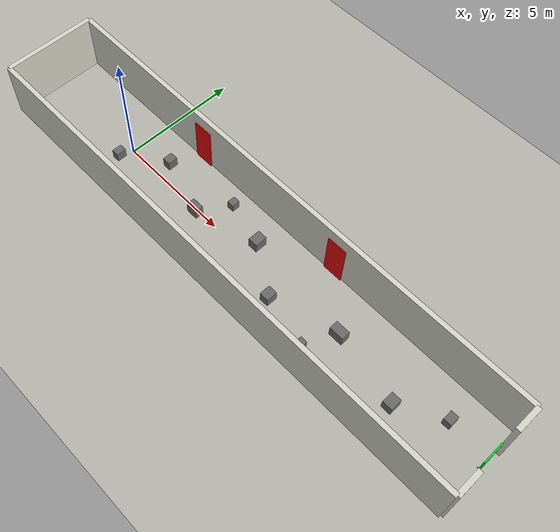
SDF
<?xml version="1.0" ?>
<sdf version="1.6">
  <world name="fire_corridor">
    <physics name="default_physics" type="ode">
      <max_step_size>0.001</max_step_size>
      <real_time_update_rate>1000</real_time_update_rate>
    </physics>
    <plugin name="gz::sim::systems::Physics" filename="gz-sim-physics-system"/>
    <plugin name="gz::sim::systems::UserCommands" filename="gz-sim-user-commands-system"/>
    <plugin name="gz::sim::systems::SceneBroadcaster" filename="gz-sim-scene-broadcaster-system"/>
    <plugin name="gz::sim::systems::Sensors" filename="gz-sim-sensors-system"><render_engine>ogre2</render_engine></plugin>
    <light type="directional" name="sun">
      <cast_shadows>true</cast_shadows>
      <pose>6 0 10 0 0 0</pose>
      <diffuse>0.9 0.9 0.9 1</diffuse>
      <specular>0.3 0.3 0.3 1</specular>
      <direction>-0.5 0.1 -1</direction>
    </light>
    <light type="point" name="light_mid">
      <pose>8 0 2.8 0 0 0</pose>
      <diffuse>0.8 0.8 0.8 1</diffuse>
      <specular>0.1 0.1 0.1 1</specular>
      <attenuation><range>16</range><linear>0.05</linear></attenuation>
    </light>

    <model name="ground_plane">
      <static>true</static>
      <link name="link">
        <collision name="col"><geometry><plane><normal>0 0 1</normal><size>30 10</size></plane></geometry></collision>
        <visual name="vis"><geometry><plane><normal>0 0 1</normal><size>30 10</size></plane></geometry>
          <material><ambient>0.72 0.72 0.68 1</ambient><diffuse>0.72 0.72 0.68 1</diffuse></material>
        </visual>
      </link>
    </model>

    <model name="wall_south">
      <static>true</static>
      <pose>6.50 -2.00 1.25 0 0 0</pose>
      <link name="link">
        <collision name="col"><geometry><box><size>23.000 0.200 2.500</size></box></geometry></collision>
        <visual name="vis">
          <geometry><box><size>23.000 0.200 2.500</size></box></geometry>
          <material><ambient>0.85 0.85 0.80 1</ambient><diffuse>0.85 0.85 0.80 1</diffuse></material>
        </visual>
      </link>
    </model>
    <model name="wall_north">
      <static>true</static>
      <pose>6.50 2.00 1.25 0 0 0</pose>
      <link name="link">
        <collision name="col"><geometry><box><size>23.000 0.200 2.500</size></box></geometry></collision>
        <visual name="vis">
          <geometry><box><size>23.000 0.200 2.500</size></box></geometry>
          <material><ambient>0.85 0.85 0.80 1</ambient><diffuse>0.85 0.85 0.80 1</diffuse></material>
        </visual>
      </link>
    </model>
    <model name="wall_west">
      <static>true</static>
      <pose>-5.00 0.00 1.25 0 0 0</pose>
      <link name="link">
        <collision name="col"><geometry><box><size>0.200 4.000 2.500</size></box></geometry></collision>
        <visual name="vis">
          <geometry><box><size>0.200 4.000 2.500</size></box></geometry>
          <material><ambient>0.85 0.85 0.80 1</ambient><diffuse>0.85 0.85 0.80 1</diffuse></material>
        </visual>
      </link>
    </model>
    <model name="wall_east_upper">
      <static>true</static>
      <pose>18.00 1.45 1.25 0 0 0</pose>
      <link name="link">
        <collision name="col"><geometry><box><size>0.200 1.100 2.500</size></box></geometry></collision>
        <visual name="vis">
          <geometry><box><size>0.200 1.100 2.500</size></box></geometry>
          <material><ambient>0.85 0.85 0.80 1</ambient><diffuse>0.85 0.85 0.80 1</diffuse></material>
        </visual>
      </link>
    </model>
    <model name="wall_east_lower">
      <static>true</static>
      <pose>18.00 -1.45 1.25 0 0 0</pose>
      <link name="link">
        <collision name="col"><geometry><box><size>0.200 1.100 2.500</size></box></geometry></collision>
        <visual name="vis">
          <geometry><box><size>0.200 1.100 2.500</size></box></geometry>
          <material><ambient>0.85 0.85 0.80 1</ambient><diffuse>0.85 0.85 0.80 1</diffuse></material>
        </visual>
      </link>
    </model>
    <model name="door_red1">
      <static>true</static>
      <pose>2.30 1.86 1.0 0 0 0</pose>
      <link name="link">
        <visual name="panel">
          <geometry><box><size>0.85 0.045 2.0</size></box></geometry>
          <material><ambient>0.92 0.04 0.04 1</ambient><diffuse>0.92 0.04 0.04 1</diffuse></material>
        </visual>
      </link>
    </model>
    <model name="handle_red1">
      <static>true</static>
      <pose>2.54 1.82 0.95 1.5708 0 0</pose>
      <link name="link">
        <visual name="handle"><geometry><cylinder><radius>0.018</radius><length>0.13</length></cylinder></geometry><material><ambient>0.75 0.60 0.05 1</ambient><diffuse>0.75 0.60 0.05 1</diffuse></material></visual>
      </link>
    </model>
    <model name="door_red2">
      <static>true</static>
      <pose>5.90 -1.86 1.0 0 0 0</pose>
      <link name="link">
        <visual name="panel">
          <geometry><box><size>0.85 0.045 2.0</size></box></geometry>
          <material><ambient>0.92 0.04 0.04 1</ambient><diffuse>0.92 0.04 0.04 1</diffuse></material>
        </visual>
      </link>
    </model>
    <model name="handle_red2">
      <static>true</static>
      <pose>6.14 -1.82 0.95 1.5708 0 0</pose>
      <link name="link">
        <visual name="handle"><geometry><cylinder><radius>0.018</radius><length>0.13</length></cylinder></geometry><material><ambient>0.75 0.60 0.05 1</ambient><diffuse>0.75 0.60 0.05 1</diffuse></material></visual>
      </link>
    </model>
    <model name="door_red3">
      <static>true</static>
      <pose>9.50 1.86 1.0 0 0 0</pose>
      <link name="link">
        <visual name="panel">
          <geometry><box><size>0.85 0.045 2.0</size></box></geometry>
          <material><ambient>0.92 0.04 0.04 1</ambient><diffuse>0.92 0.04 0.04 1</diffuse></material>
        </visual>
      </link>
    </model>
    <model name="handle_red3">
      <static>true</static>
      <pose>9.74 1.82 0.95 1.5708 0 0</pose>
      <link name="link">
        <visual name="handle"><geometry><cylinder><radius>0.018</radius><length>0.13</length></cylinder></geometry><material><ambient>0.75 0.60 0.05 1</ambient><diffuse>0.75 0.60 0.05 1</diffuse></material></visual>
      </link>
    </model>
    <model name="door_red4">
      <static>true</static>
      <pose>13.20 -1.86 1.0 0 0 0</pose>
      <link name="link">
        <visual name="panel">
          <geometry><box><size>0.85 0.045 2.0</size></box></geometry>
          <material><ambient>0.92 0.04 0.04 1</ambient><diffuse>0.92 0.04 0.04 1</diffuse></material>
        </visual>
      </link>
    </model>
    <model name="handle_red4">
      <static>true</static>
      <pose>13.44 -1.82 0.95 1.5708 0 0</pose>
      <link name="link">
        <visual name="handle"><geometry><cylinder><radius>0.018</radius><length>0.13</length></cylinder></geometry><material><ambient>0.75 0.60 0.05 1</ambient><diffuse>0.75 0.60 0.05 1</diffuse></material></visual>
      </link>
    </model>
    <model name="exit_green">
      <static>true</static>
      <pose>17.92 0 1.0 0 0 0</pose>
      <link name="link">
        <visual name="panel">
          <geometry><box><size>0.06 0.9 2.0</size></box></geometry>
          <material><ambient>0.02 0.85 0.12 1</ambient><diffuse>0.02 0.85 0.12 1</diffuse></material>
        </visual>
      </link>
    </model>
    <model name="handle_exit">
      <static>true</static>
      <pose>17.88 -0.30 0.95 0 1.5708 0</pose>
      <link name="link">
        <visual name="handle"><geometry><cylinder><radius>0.018</radius><length>0.13</length></cylinder></geometry><material><ambient>0.75 0.60 0.05 1</ambient><diffuse>0.75 0.60 0.05 1</diffuse></material></visual>
      </link>
    </model>
    <model name="world4_obs_01">
      <static>true</static>
      <pose>-0.20 -0.55 0.21 0 0 0</pose>
      <link name="link">
        <collision name="col"><geometry><box><size>0.320 0.420 0.420</size></box></geometry></collision>
        <visual name="vis">
          <geometry><box><size>0.320 0.420 0.420</size></box></geometry>
          <material><ambient>0.42 0.42 0.42 1</ambient><diffuse>0.42 0.42 0.42 1</diffuse></material>
        </visual>
      </link>
    </model>
    <model name="world4_obs_02">
      <static>true</static>
      <pose>1.55 0.68 0.22 0 0 0</pose>
      <link name="link">
        <collision name="col"><geometry><box><size>0.360 0.420 0.440</size></box></geometry></collision>
        <visual name="vis">
          <geometry><box><size>0.360 0.420 0.440</size></box></geometry>
          <material><ambient>0.42 0.42 0.42 1</ambient><diffuse>0.42 0.42 0.42 1</diffuse></material>
        </visual>
      </link>
    </model>
    <model name="world4_obs_03">
      <static>true</static>
      <pose>3.95 -0.10 0.24 0 0 0</pose>
      <link name="link">
        <collision name="col"><geometry><box><size>0.520 0.360 0.480</size></box></geometry></collision>
        <visual name="vis">
          <geometry><box><size>0.520 0.360 0.480</size></box></geometry>
          <material><ambient>0.42 0.42 0.42 1</ambient><diffuse>0.42 0.42 0.42 1</diffuse></material>
        </visual>
      </link>
    </model>
    <model name="world4_obs_04">
      <static>true</static>
      <pose>6.70 0.65 0.24 0 0 0</pose>
      <link name="link">
        <collision name="col"><geometry><box><size>0.420 0.520 0.480</size></box></geometry></collision>
        <visual name="vis">
          <geometry><box><size>0.420 0.520 0.480</size></box></geometry>
          <material><ambient>0.42 0.42 0.42 1</ambient><diffuse>0.42 0.42 0.42 1</diffuse></material>
        </visual>
      </link>
    </model>
    <model name="world4_obs_05">
      <static>true</static>
      <pose>8.65 -0.66 0.23 0 0 0</pose>
      <link name="link">
        <collision name="col"><geometry><box><size>0.400 0.460 0.460</size></box></geometry></collision>
        <visual name="vis">
          <geometry><box><size>0.400 0.460 0.460</size></box></geometry>
          <material><ambient>0.42 0.42 0.42 1</ambient><diffuse>0.42 0.42 0.42 1</diffuse></material>
        </visual>
      </link>
    </model>
    <model name="world4_obs_06">
      <static>true</static>
      <pose>11.45 0.15 0.25 0 0 0</pose>
      <link name="link">
        <collision name="col"><geometry><box><size>0.620 0.380 0.500</size></box></geometry></collision>
        <visual name="vis">
          <geometry><box><size>0.620 0.380 0.500</size></box></geometry>
          <material><ambient>0.42 0.42 0.42 1</ambient><diffuse>0.42 0.42 0.42 1</diffuse></material>
        </visual>
      </link>
    </model>
    <model name="world4_obs_07">
      <static>true</static>
      <pose>14.45 -0.44 0.23 0 0 0</pose>
      <link name="link">
        <collision name="col"><geometry><box><size>0.420 0.500 0.460</size></box></geometry></collision>
        <visual name="vis">
          <geometry><box><size>0.420 0.500 0.460</size></box></geometry>
          <material><ambient>0.42 0.42 0.42 1</ambient><diffuse>0.42 0.42 0.42 1</diffuse></material>
        </visual>
      </link>
    </model>
    <model name="world4_obs_08">
      <static>true</static>
      <pose>16.20 0.58 0.21 0 0 0</pose>
      <link name="link">
        <collision name="col"><geometry><box><size>0.340 0.420 0.420</size></box></geometry></collision>
        <visual name="vis">
          <geometry><box><size>0.340 0.420 0.420</size></box></geometry>
          <material><ambient>0.42 0.42 0.42 1</ambient><diffuse>0.42 0.42 0.42 1</diffuse></material>
        </visual>
      </link>
    </model>
    <model name="world4_obs_09">
      <static>true</static>
      <pose>4.80 1.16 0.19 0 0 0</pose>
      <link name="link">
        <collision name="col"><geometry><box><size>0.300 0.340 0.380</size></box></geometry></collision>
        <visual name="vis">
          <geometry><box><size>0.300 0.340 0.380</size></box></geometry>
          <material><ambient>0.42 0.42 0.42 1</ambient><diffuse>0.42 0.42 0.42 1</diffuse></material>
        </visual>
      </link>
    </model>
    <model name="world4_obs_10">
      <static>true</static>
      <pose>10.80 -1.14 0.19 0 0 0</pose>
      <link name="link">
        <collision name="col"><geometry><box><size>0.300 0.320 0.380</size></box></geometry></collision>
        <visual name="vis">
          <geometry><box><size>0.300 0.320 0.380</size></box></geometry>
          <material><ambient>0.42 0.42 0.42 1</ambient><diffuse>0.42 0.42 0.42 1</diffuse></material>
        </visual>
      </link>
    </model>
  </world>
</sdf>
